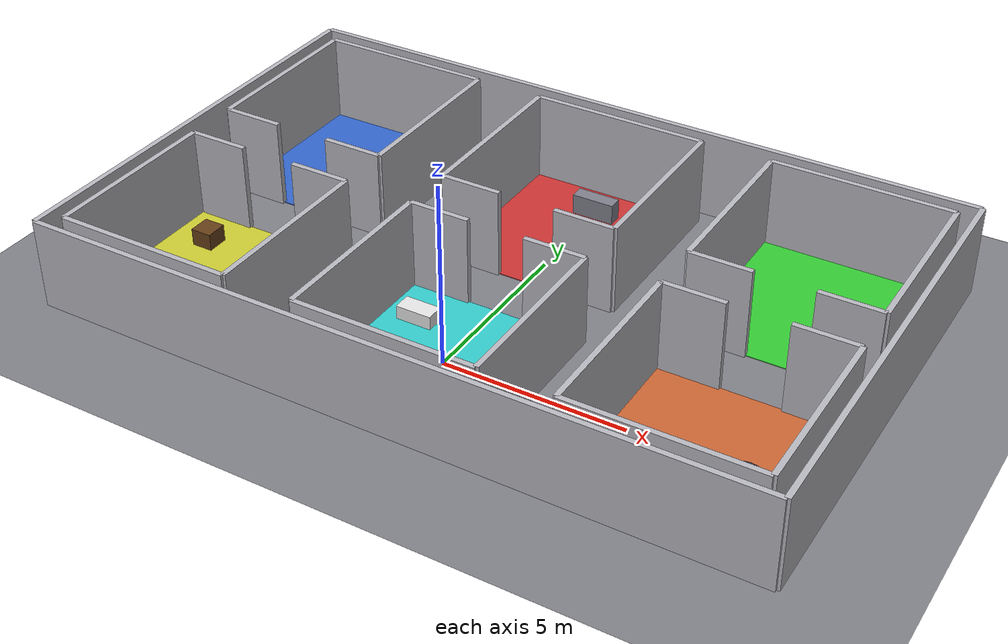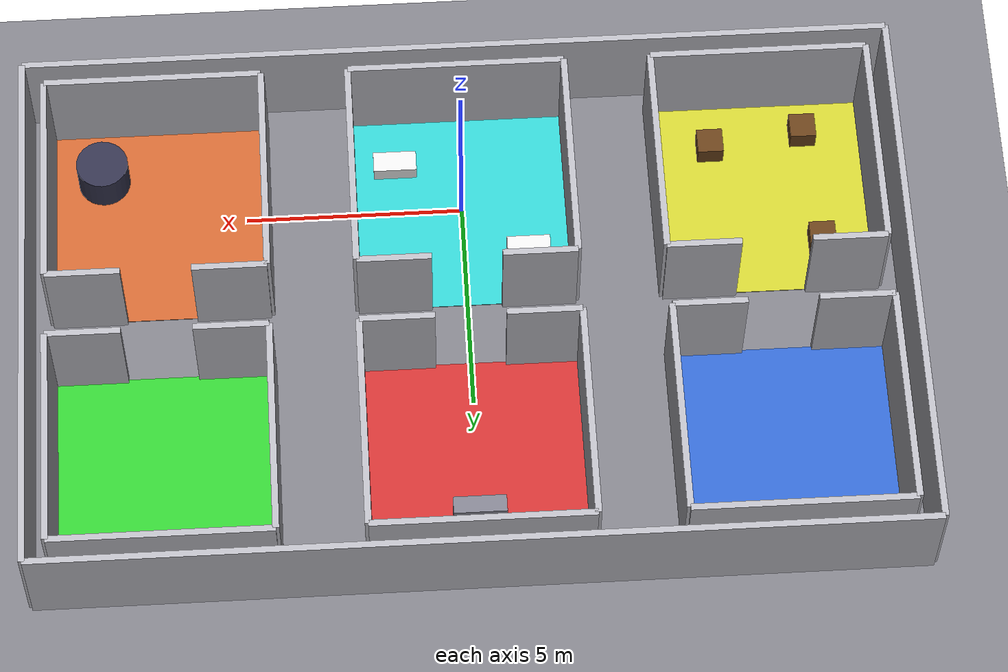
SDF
<?xml version="1.0" ?>
<sdf version="1.7">
  <world name="spacecraft_clean">

    <plugin filename="gz-sim-physics-system" name="gz::sim::systems::Physics"/>
    <plugin filename="gz-sim-user-commands-system" name="gz::sim::systems::UserCommands"/>
    <plugin filename="gz-sim-scene-broadcaster-system" name="gz::sim::systems::SceneBroadcaster"/>
    <plugin filename="gz-sim-contact-system" name="gz::sim::systems::Contact"/>
    <!-- Sensors system MUST be a world plugin - it owns the render pass that
         produces gpu_lidar data. Without it /scan is silent and Nav2 is blind. -->
    <plugin filename="gz-sim-sensors-system" name="gz::sim::systems::Sensors">
      <render_engine>ogre2</render_engine>
    </plugin>

    <physics name="1ms" type="dartsim">
      <max_step_size>0.001</max_step_size>
      <real_time_factor>1.0</real_time_factor>
    </physics>
    <gravity>0 0 -9.81</gravity>

    <light name="sun" type="directional">
      <pose>0 0 10 0 0 0</pose>
      <direction>0 -0.3 -1</direction>
      <diffuse>1 1 1 1</diffuse>
      <specular>0.6 0.6 0.6 1</specular>
      <cast_shadows>false</cast_shadows>
    </light>

    <light name="overhead" type="point">
      <pose>0 3 9 0 0 0</pose>
      <diffuse>0.9 0.9 0.9 1</diffuse>
      <attenuation>
        <range>40</range><constant>0.3</constant>
        <linear>0.01</linear><quadratic>0.001</quadratic>
      </attenuation>
    </light>

    <!-- Opens the Gazebo camera looking down at the whole station instead of
         at the origin, so the demo video framing is right immediately. -->
    <gui fullscreen="0">
      <plugin filename="MinimalScene" name="3D View">
        <gz-gui>
          <property key="showTitleBar" type="bool">false</property>
          <property key="state" type="string">docked</property>
        </gz-gui>
        <engine>ogre2</engine>
        <scene>scene</scene>
        <ambient_light>0.5 0.5 0.5</ambient_light>
        <background_color>0.05 0.05 0.10</background_color>
        <camera_pose>0 -14 22 0 0.95 1.5708</camera_pose>
      </plugin>
      <plugin filename="GzSceneManager" name="Scene Manager"/>
      <plugin filename="InteractiveViewControl" name="Interactive view control"/>
      <plugin filename="CameraTracking" name="Camera Tracking"/>
      <plugin filename="WorldControl" name="World control">
        <gz-gui>
          <property type="bool" key="showTitleBar">false</property>
          <property type="string" key="state">floating</property>
          <property type="double" key="height">72</property>
          <property type="double" key="width">121</property>
          <property type="double" key="z">1</property>
        </gz-gui>
        <play_pause>true</play_pause>
        <step>true</step>
        <start_paused>false</start_paused>
      </plugin>
      <plugin filename="WorldStats" name="World stats">
        <gz-gui>
          <property type="bool" key="showTitleBar">false</property>
          <property type="string" key="state">floating</property>
        </gz-gui>
        <sim_time>true</sim_time>
        <real_time_factor>true</real_time_factor>
      </plugin>
      <plugin filename="EntityTree" name="Entity tree"/>
    </gui>

    <model name="ground_plane">
      <static>true</static>
      <link name="link">
        <visual name="visual">
          <geometry><plane><normal>0 0 1</normal><size>60 60</size></plane></geometry>
          <material>
            <ambient>0.45 0.45 0.48 1</ambient><diffuse>0.5 0.5 0.53 1</diffuse>
          </material>
        </visual>
        <collision name="collision">
          <geometry><plane><normal>0 0 1</normal><size>60 60</size></plane></geometry>
        </collision>
      </link>
    </model>

    <!-- Room floors (visual identity for the demo video) -->
    <model name="floor_cargo_bay">
      <static>true</static>
      <pose>-7.0 0.0 0.01 0 0 0</pose>
      <link name="link">
        <visual name="visual">
          <geometry><box><size>5.0 5.0 0.02</size></box></geometry>
          <material>
            <ambient>0.8 0.8 0.2 1</ambient><diffuse>0.8 0.8 0.2 1</diffuse>
          </material>
        </visual>
        <collision name="collision">
          <geometry><box><size>5.0 5.0 0.02</size></box></geometry>
        </collision>
      </link>
    </model>
    <model name="floor_medical_bay">
      <static>true</static>
      <pose>0.0 0.0 0.01 0 0 0</pose>
      <link name="link">
        <visual name="visual">
          <geometry><box><size>5.0 5.0 0.02</size></box></geometry>
          <material>
            <ambient>0.2 0.8 0.8 1</ambient><diffuse>0.2 0.8 0.8 1</diffuse>
          </material>
        </visual>
        <collision name="collision">
          <geometry><box><size>5.0 5.0 0.02</size></box></geometry>
        </collision>
      </link>
    </model>
    <model name="floor_engine_room">
      <static>true</static>
      <pose>7.0 0.0 0.01 0 0 0</pose>
      <link name="link">
        <visual name="visual">
          <geometry><box><size>5.0 5.0 0.02</size></box></geometry>
          <material>
            <ambient>0.8 0.4 0.2 1</ambient><diffuse>0.8 0.4 0.2 1</diffuse>
          </material>
        </visual>
        <collision name="collision">
          <geometry><box><size>5.0 5.0 0.02</size></box></geometry>
        </collision>
      </link>
    </model>
    <model name="floor_command_module">
      <static>true</static>
      <pose>-7.0 6.5 0.01 0 0 0</pose>
      <link name="link">
        <visual name="visual">
          <geometry><box><size>5.0 5.0 0.02</size></box></geometry>
          <material>
            <ambient>0.2 0.4 0.8 1</ambient><diffuse>0.2 0.4 0.8 1</diffuse>
          </material>
        </visual>
        <collision name="collision">
          <geometry><box><size>5.0 5.0 0.02</size></box></geometry>
        </collision>
      </link>
    </model>
    <model name="floor_sleeping_quarters">
      <static>true</static>
      <pose>0.0 6.5 0.01 0 0 0</pose>
      <link name="link">
        <visual name="visual">
          <geometry><box><size>5.0 5.0 0.02</size></box></geometry>
          <material>
            <ambient>0.8 0.2 0.2 1</ambient><diffuse>0.8 0.2 0.2 1</diffuse>
          </material>
        </visual>
        <collision name="collision">
          <geometry><box><size>5.0 5.0 0.02</size></box></geometry>
        </collision>
      </link>
    </model>
    <model name="floor_airlock">
      <static>true</static>
      <pose>7.0 6.5 0.01 0 0 0</pose>
      <link name="link">
        <visual name="visual">
          <geometry><box><size>5.0 5.0 0.02</size></box></geometry>
          <material>
            <ambient>0.2 0.8 0.2 1</ambient><diffuse>0.2 0.8 0.2 1</diffuse>
          </material>
        </visual>
        <collision name="collision">
          <geometry><box><size>5.0 5.0 0.02</size></box></geometry>
        </collision>
      </link>
    </model>

    <!-- Walls -->
    <model name="wall_0">
      <static>true</static>
      <pose>-9.5 0.0 1.25 0 0 0</pose>
      <link name="link">
        <visual name="visual">
          <geometry><box><size>0.15 5.0 2.5</size></box></geometry>
          <material>
            <ambient>0.72 0.72 0.75 1</ambient><diffuse>0.72 0.72 0.75 1</diffuse>
          </material>
        </visual>
        <collision name="collision">
          <geometry><box><size>0.15 5.0 2.5</size></box></geometry>
        </collision>
      </link>
    </model>
    <model name="wall_1">
      <static>true</static>
      <pose>-4.5 0.0 1.25 0 0 0</pose>
      <link name="link">
        <visual name="visual">
          <geometry><box><size>0.15 5.0 2.5</size></box></geometry>
          <material>
            <ambient>0.72 0.72 0.75 1</ambient><diffuse>0.72 0.72 0.75 1</diffuse>
          </material>
        </visual>
        <collision name="collision">
          <geometry><box><size>0.15 5.0 2.5</size></box></geometry>
        </collision>
      </link>
    </model>
    <model name="wall_2">
      <static>true</static>
      <pose>-7.0 -2.5 1.25 0 0 0</pose>
      <link name="link">
        <visual name="visual">
          <geometry><box><size>5.0 0.15 2.5</size></box></geometry>
          <material>
            <ambient>0.72 0.72 0.75 1</ambient><diffuse>0.72 0.72 0.75 1</diffuse>
          </material>
        </visual>
        <collision name="collision">
          <geometry><box><size>5.0 0.15 2.5</size></box></geometry>
        </collision>
      </link>
    </model>
    <model name="wall_3">
      <static>true</static>
      <pose>-8.65 2.5 1.25 0 0 0</pose>
      <link name="link">
        <visual name="visual">
          <geometry><box><size>1.7000000000000002 0.15 2.5</size></box></geometry>
          <material>
            <ambient>0.72 0.72 0.75 1</ambient><diffuse>0.72 0.72 0.75 1</diffuse>
          </material>
        </visual>
        <collision name="collision">
          <geometry><box><size>1.7000000000000002 0.15 2.5</size></box></geometry>
        </collision>
      </link>
    </model>
    <model name="wall_4">
      <static>true</static>
      <pose>-5.35 2.5 1.25 0 0 0</pose>
      <link name="link">
        <visual name="visual">
          <geometry><box><size>1.7000000000000002 0.15 2.5</size></box></geometry>
          <material>
            <ambient>0.72 0.72 0.75 1</ambient><diffuse>0.72 0.72 0.75 1</diffuse>
          </material>
        </visual>
        <collision name="collision">
          <geometry><box><size>1.7000000000000002 0.15 2.5</size></box></geometry>
        </collision>
      </link>
    </model>
    <model name="wall_5">
      <static>true</static>
      <pose>-2.5 0.0 1.25 0 0 0</pose>
      <link name="link">
        <visual name="visual">
          <geometry><box><size>0.15 5.0 2.5</size></box></geometry>
          <material>
            <ambient>0.72 0.72 0.75 1</ambient><diffuse>0.72 0.72 0.75 1</diffuse>
          </material>
        </visual>
        <collision name="collision">
          <geometry><box><size>0.15 5.0 2.5</size></box></geometry>
        </collision>
      </link>
    </model>
    <model name="wall_6">
      <static>true</static>
      <pose>2.5 0.0 1.25 0 0 0</pose>
      <link name="link">
        <visual name="visual">
          <geometry><box><size>0.15 5.0 2.5</size></box></geometry>
          <material>
            <ambient>0.72 0.72 0.75 1</ambient><diffuse>0.72 0.72 0.75 1</diffuse>
          </material>
        </visual>
        <collision name="collision">
          <geometry><box><size>0.15 5.0 2.5</size></box></geometry>
        </collision>
      </link>
    </model>
    <model name="wall_7">
      <static>true</static>
      <pose>0.0 -2.5 1.25 0 0 0</pose>
      <link name="link">
        <visual name="visual">
          <geometry><box><size>5.0 0.15 2.5</size></box></geometry>
          <material>
            <ambient>0.72 0.72 0.75 1</ambient><diffuse>0.72 0.72 0.75 1</diffuse>
          </material>
        </visual>
        <collision name="collision">
          <geometry><box><size>5.0 0.15 2.5</size></box></geometry>
        </collision>
      </link>
    </model>
    <model name="wall_8">
      <static>true</static>
      <pose>-1.65 2.5 1.25 0 0 0</pose>
      <link name="link">
        <visual name="visual">
          <geometry><box><size>1.7 0.15 2.5</size></box></geometry>
          <material>
            <ambient>0.72 0.72 0.75 1</ambient><diffuse>0.72 0.72 0.75 1</diffuse>
          </material>
        </visual>
        <collision name="collision">
          <geometry><box><size>1.7 0.15 2.5</size></box></geometry>
        </collision>
      </link>
    </model>
    <model name="wall_9">
      <static>true</static>
      <pose>1.65 2.5 1.25 0 0 0</pose>
      <link name="link">
        <visual name="visual">
          <geometry><box><size>1.7 0.15 2.5</size></box></geometry>
          <material>
            <ambient>0.72 0.72 0.75 1</ambient><diffuse>0.72 0.72 0.75 1</diffuse>
          </material>
        </visual>
        <collision name="collision">
          <geometry><box><size>1.7 0.15 2.5</size></box></geometry>
        </collision>
      </link>
    </model>
    <model name="wall_10">
      <static>true</static>
      <pose>4.5 0.0 1.25 0 0 0</pose>
      <link name="link">
        <visual name="visual">
          <geometry><box><size>0.15 5.0 2.5</size></box></geometry>
          <material>
            <ambient>0.72 0.72 0.75 1</ambient><diffuse>0.72 0.72 0.75 1</diffuse>
          </material>
        </visual>
        <collision name="collision">
          <geometry><box><size>0.15 5.0 2.5</size></box></geometry>
        </collision>
      </link>
    </model>
    <model name="wall_11">
      <static>true</static>
      <pose>9.5 0.0 1.25 0 0 0</pose>
      <link name="link">
        <visual name="visual">
          <geometry><box><size>0.15 5.0 2.5</size></box></geometry>
          <material>
            <ambient>0.72 0.72 0.75 1</ambient><diffuse>0.72 0.72 0.75 1</diffuse>
          </material>
        </visual>
        <collision name="collision">
          <geometry><box><size>0.15 5.0 2.5</size></box></geometry>
        </collision>
      </link>
    </model>
    <model name="wall_12">
      <static>true</static>
      <pose>7.0 -2.5 1.25 0 0 0</pose>
      <link name="link">
        <visual name="visual">
          <geometry><box><size>5.0 0.15 2.5</size></box></geometry>
          <material>
            <ambient>0.72 0.72 0.75 1</ambient><diffuse>0.72 0.72 0.75 1</diffuse>
          </material>
        </visual>
        <collision name="collision">
          <geometry><box><size>5.0 0.15 2.5</size></box></geometry>
        </collision>
      </link>
    </model>
    <model name="wall_13">
      <static>true</static>
      <pose>5.35 2.5 1.25 0 0 0</pose>
      <link name="link">
        <visual name="visual">
          <geometry><box><size>1.7000000000000002 0.15 2.5</size></box></geometry>
          <material>
            <ambient>0.72 0.72 0.75 1</ambient><diffuse>0.72 0.72 0.75 1</diffuse>
          </material>
        </visual>
        <collision name="collision">
          <geometry><box><size>1.7000000000000002 0.15 2.5</size></box></geometry>
        </collision>
      </link>
    </model>
    <model name="wall_14">
      <static>true</static>
      <pose>8.65 2.5 1.25 0 0 0</pose>
      <link name="link">
        <visual name="visual">
          <geometry><box><size>1.7000000000000002 0.15 2.5</size></box></geometry>
          <material>
            <ambient>0.72 0.72 0.75 1</ambient><diffuse>0.72 0.72 0.75 1</diffuse>
          </material>
        </visual>
        <collision name="collision">
          <geometry><box><size>1.7000000000000002 0.15 2.5</size></box></geometry>
        </collision>
      </link>
    </model>
    <model name="wall_15">
      <static>true</static>
      <pose>-9.5 6.5 1.25 0 0 0</pose>
      <link name="link">
        <visual name="visual">
          <geometry><box><size>0.15 5.0 2.5</size></box></geometry>
          <material>
            <ambient>0.72 0.72 0.75 1</ambient><diffuse>0.72 0.72 0.75 1</diffuse>
          </material>
        </visual>
        <collision name="collision">
          <geometry><box><size>0.15 5.0 2.5</size></box></geometry>
        </collision>
      </link>
    </model>
    <model name="wall_16">
      <static>true</static>
      <pose>-4.5 6.5 1.25 0 0 0</pose>
      <link name="link">
        <visual name="visual">
          <geometry><box><size>0.15 5.0 2.5</size></box></geometry>
          <material>
            <ambient>0.72 0.72 0.75 1</ambient><diffuse>0.72 0.72 0.75 1</diffuse>
          </material>
        </visual>
        <collision name="collision">
          <geometry><box><size>0.15 5.0 2.5</size></box></geometry>
        </collision>
      </link>
    </model>
    <model name="wall_17">
      <static>true</static>
      <pose>-7.0 9.0 1.25 0 0 0</pose>
      <link name="link">
        <visual name="visual">
          <geometry><box><size>5.0 0.15 2.5</size></box></geometry>
          <material>
            <ambient>0.72 0.72 0.75 1</ambient><diffuse>0.72 0.72 0.75 1</diffuse>
          </material>
        </visual>
        <collision name="collision">
          <geometry><box><size>5.0 0.15 2.5</size></box></geometry>
        </collision>
      </link>
    </model>
    <model name="wall_18">
      <static>true</static>
      <pose>-8.65 4.0 1.25 0 0 0</pose>
      <link name="link">
        <visual name="visual">
          <geometry><box><size>1.7000000000000002 0.15 2.5</size></box></geometry>
          <material>
            <ambient>0.72 0.72 0.75 1</ambient><diffuse>0.72 0.72 0.75 1</diffuse>
          </material>
        </visual>
        <collision name="collision">
          <geometry><box><size>1.7000000000000002 0.15 2.5</size></box></geometry>
        </collision>
      </link>
    </model>
    <model name="wall_19">
      <static>true</static>
      <pose>-5.35 4.0 1.25 0 0 0</pose>
      <link name="link">
        <visual name="visual">
          <geometry><box><size>1.7000000000000002 0.15 2.5</size></box></geometry>
          <material>
            <ambient>0.72 0.72 0.75 1</ambient><diffuse>0.72 0.72 0.75 1</diffuse>
          </material>
        </visual>
        <collision name="collision">
          <geometry><box><size>1.7000000000000002 0.15 2.5</size></box></geometry>
        </collision>
      </link>
    </model>
    <model name="wall_20">
      <static>true</static>
      <pose>-2.5 6.5 1.25 0 0 0</pose>
      <link name="link">
        <visual name="visual">
          <geometry><box><size>0.15 5.0 2.5</size></box></geometry>
          <material>
            <ambient>0.72 0.72 0.75 1</ambient><diffuse>0.72 0.72 0.75 1</diffuse>
          </material>
        </visual>
        <collision name="collision">
          <geometry><box><size>0.15 5.0 2.5</size></box></geometry>
        </collision>
      </link>
    </model>
    <model name="wall_21">
      <static>true</static>
      <pose>2.5 6.5 1.25 0 0 0</pose>
      <link name="link">
        <visual name="visual">
          <geometry><box><size>0.15 5.0 2.5</size></box></geometry>
          <material>
            <ambient>0.72 0.72 0.75 1</ambient><diffuse>0.72 0.72 0.75 1</diffuse>
          </material>
        </visual>
        <collision name="collision">
          <geometry><box><size>0.15 5.0 2.5</size></box></geometry>
        </collision>
      </link>
    </model>
    <model name="wall_22">
      <static>true</static>
      <pose>0.0 9.0 1.25 0 0 0</pose>
      <link name="link">
        <visual name="visual">
          <geometry><box><size>5.0 0.15 2.5</size></box></geometry>
          <material>
            <ambient>0.72 0.72 0.75 1</ambient><diffuse>0.72 0.72 0.75 1</diffuse>
          </material>
        </visual>
        <collision name="collision">
          <geometry><box><size>5.0 0.15 2.5</size></box></geometry>
        </collision>
      </link>
    </model>
    <model name="wall_23">
      <static>true</static>
      <pose>-1.65 4.0 1.25 0 0 0</pose>
      <link name="link">
        <visual name="visual">
          <geometry><box><size>1.7 0.15 2.5</size></box></geometry>
          <material>
            <ambient>0.72 0.72 0.75 1</ambient><diffuse>0.72 0.72 0.75 1</diffuse>
          </material>
        </visual>
        <collision name="collision">
          <geometry><box><size>1.7 0.15 2.5</size></box></geometry>
        </collision>
      </link>
    </model>
    <model name="wall_24">
      <static>true</static>
      <pose>1.65 4.0 1.25 0 0 0</pose>
      <link name="link">
        <visual name="visual">
          <geometry><box><size>1.7 0.15 2.5</size></box></geometry>
          <material>
            <ambient>0.72 0.72 0.75 1</ambient><diffuse>0.72 0.72 0.75 1</diffuse>
          </material>
        </visual>
        <collision name="collision">
          <geometry><box><size>1.7 0.15 2.5</size></box></geometry>
        </collision>
      </link>
    </model>
    <model name="wall_25">
      <static>true</static>
      <pose>4.5 6.5 1.25 0 0 0</pose>
      <link name="link">
        <visual name="visual">
          <geometry><box><size>0.15 5.0 2.5</size></box></geometry>
          <material>
            <ambient>0.72 0.72 0.75 1</ambient><diffuse>0.72 0.72 0.75 1</diffuse>
          </material>
        </visual>
        <collision name="collision">
          <geometry><box><size>0.15 5.0 2.5</size></box></geometry>
        </collision>
      </link>
    </model>
    <model name="wall_26">
      <static>true</static>
      <pose>9.5 6.5 1.25 0 0 0</pose>
      <link name="link">
        <visual name="visual">
          <geometry><box><size>0.15 5.0 2.5</size></box></geometry>
          <material>
            <ambient>0.72 0.72 0.75 1</ambient><diffuse>0.72 0.72 0.75 1</diffuse>
          </material>
        </visual>
        <collision name="collision">
          <geometry><box><size>0.15 5.0 2.5</size></box></geometry>
        </collision>
      </link>
    </model>
    <model name="wall_27">
      <static>true</static>
      <pose>7.0 9.0 1.25 0 0 0</pose>
      <link name="link">
        <visual name="visual">
          <geometry><box><size>5.0 0.15 2.5</size></box></geometry>
          <material>
            <ambient>0.72 0.72 0.75 1</ambient><diffuse>0.72 0.72 0.75 1</diffuse>
          </material>
        </visual>
        <collision name="collision">
          <geometry><box><size>5.0 0.15 2.5</size></box></geometry>
        </collision>
      </link>
    </model>
    <model name="wall_28">
      <static>true</static>
      <pose>5.35 4.0 1.25 0 0 0</pose>
      <link name="link">
        <visual name="visual">
          <geometry><box><size>1.7000000000000002 0.15 2.5</size></box></geometry>
          <material>
            <ambient>0.72 0.72 0.75 1</ambient><diffuse>0.72 0.72 0.75 1</diffuse>
          </material>
        </visual>
        <collision name="collision">
          <geometry><box><size>1.7000000000000002 0.15 2.5</size></box></geometry>
        </collision>
      </link>
    </model>
    <model name="wall_29">
      <static>true</static>
      <pose>8.65 4.0 1.25 0 0 0</pose>
      <link name="link">
        <visual name="visual">
          <geometry><box><size>1.7000000000000002 0.15 2.5</size></box></geometry>
          <material>
            <ambient>0.72 0.72 0.75 1</ambient><diffuse>0.72 0.72 0.75 1</diffuse>
          </material>
        </visual>
        <collision name="collision">
          <geometry><box><size>1.7000000000000002 0.15 2.5</size></box></geometry>
        </collision>
      </link>
    </model>
    <model name="wall_30">
      <static>true</static>
      <pose>0.0 -3.0 1.25 0 0 0</pose>
      <link name="link">
        <visual name="visual">
          <geometry><box><size>20.0 0.15 2.5</size></box></geometry>
          <material>
            <ambient>0.72 0.72 0.75 1</ambient><diffuse>0.72 0.72 0.75 1</diffuse>
          </material>
        </visual>
        <collision name="collision">
          <geometry><box><size>20.0 0.15 2.5</size></box></geometry>
        </collision>
      </link>
    </model>
    <model name="wall_31">
      <static>true</static>
      <pose>0.0 9.5 1.25 0 0 0</pose>
      <link name="link">
        <visual name="visual">
          <geometry><box><size>20.0 0.15 2.5</size></box></geometry>
          <material>
            <ambient>0.72 0.72 0.75 1</ambient><diffuse>0.72 0.72 0.75 1</diffuse>
          </material>
        </visual>
        <collision name="collision">
          <geometry><box><size>20.0 0.15 2.5</size></box></geometry>
        </collision>
      </link>
    </model>
    <model name="wall_32">
      <static>true</static>
      <pose>-10.0 3.25 1.25 0 0 0</pose>
      <link name="link">
        <visual name="visual">
          <geometry><box><size>0.15 12.5 2.5</size></box></geometry>
          <material>
            <ambient>0.72 0.72 0.75 1</ambient><diffuse>0.72 0.72 0.75 1</diffuse>
          </material>
        </visual>
        <collision name="collision">
          <geometry><box><size>0.15 12.5 2.5</size></box></geometry>
        </collision>
      </link>
    </model>
    <model name="wall_33">
      <static>true</static>
      <pose>10.0 3.25 1.25 0 0 0</pose>
      <link name="link">
        <visual name="visual">
          <geometry><box><size>0.15 12.5 2.5</size></box></geometry>
          <material>
            <ambient>0.72 0.72 0.75 1</ambient><diffuse>0.72 0.72 0.75 1</diffuse>
          </material>
        </visual>
        <collision name="collision">
          <geometry><box><size>0.15 12.5 2.5</size></box></geometry>
        </collision>
      </link>
    </model>

    <!-- Obstacles -->
    <model name="crate1">
      <static>true</static>
      <pose>-8.3 1.3 0.25 0 0 0</pose>
      <link name="link">
        <visual name="visual">
          <geometry><box><size>0.6 0.6 0.5</size></box></geometry>
          <material>
            <ambient>0.4 0.25 0.1 1</ambient><diffuse>0.4 0.25 0.1 1</diffuse>
          </material>
        </visual>
        <collision name="collision">
          <geometry><box><size>0.6 0.6 0.5</size></box></geometry>
        </collision>
      </link>
    </model>
    <model name="crate2">
      <static>true</static>
      <pose>-5.9 -1.3 0.25 0 0 0</pose>
      <link name="link">
        <visual name="visual">
          <geometry><box><size>0.6 0.6 0.5</size></box></geometry>
          <material>
            <ambient>0.4 0.25 0.1 1</ambient><diffuse>0.4 0.25 0.1 1</diffuse>
          </material>
        </visual>
        <collision name="collision">
          <geometry><box><size>0.6 0.6 0.5</size></box></geometry>
        </collision>
      </link>
    </model>
    <model name="crate3">
      <static>true</static>
      <pose>-8.1 -1.6 0.25 0 0 0</pose>
      <link name="link">
        <visual name="visual">
          <geometry><box><size>0.6 0.6 0.5</size></box></geometry>
          <material>
            <ambient>0.4 0.25 0.1 1</ambient><diffuse>0.4 0.25 0.1 1</diffuse>
          </material>
        </visual>
        <collision name="collision">
          <geometry><box><size>0.6 0.6 0.5</size></box></geometry>
        </collision>
      </link>
    </model>
    <model name="bed1">
      <static>true</static>
      <pose>-1.5 1.2 0.2 0 0 0</pose>
      <link name="link">
        <visual name="visual">
          <geometry><box><size>1.0 0.5 0.4</size></box></geometry>
          <material>
            <ambient>0.9 0.9 0.9 1</ambient><diffuse>0.9 0.9 0.9 1</diffuse>
          </material>
        </visual>
        <collision name="collision">
          <geometry><box><size>1.0 0.5 0.4</size></box></geometry>
        </collision>
      </link>
    </model>
    <model name="bed2">
      <static>true</static>
      <pose>1.5 -1.2 0.2 0 0 0</pose>
      <link name="link">
        <visual name="visual">
          <geometry><box><size>1.0 0.5 0.4</size></box></geometry>
          <material>
            <ambient>0.9 0.9 0.9 1</ambient><diffuse>0.9 0.9 0.9 1</diffuse>
          </material>
        </visual>
        <collision name="collision">
          <geometry><box><size>1.0 0.5 0.4</size></box></geometry>
        </collision>
      </link>
    </model>
    <model name="engine_core">
      <static>true</static>
      <pose>8.3 -1.2 0.45 0 0 0</pose>
      <link name="link">
        <visual name="visual">
          <geometry><cylinder><radius>0.6</radius><length>0.9</length></cylinder></geometry>
          <material>
            <ambient>0.2 0.2 0.3 1</ambient><diffuse>0.2 0.2 0.3 1</diffuse>
          </material>
        </visual>
        <collision name="collision">
          <geometry><cylinder><radius>0.6</radius><length>0.9</length></cylinder></geometry>
        </collision>
      </link>
    </model>
    <model name="supply_rack">
      <static>true</static>
      <pose>0.0 7.8 0.3 0 0 0</pose>
      <link name="link">
        <visual name="visual">
          <geometry><box><size>1.2 0.4 0.6</size></box></geometry>
          <material>
            <ambient>0.5 0.5 0.55 1</ambient><diffuse>0.5 0.5 0.55 1</diffuse>
          </material>
        </visual>
        <collision name="collision">
          <geometry><box><size>1.2 0.4 0.6</size></box></geometry>
        </collision>
      </link>
    </model>
  </world>
</sdf>
